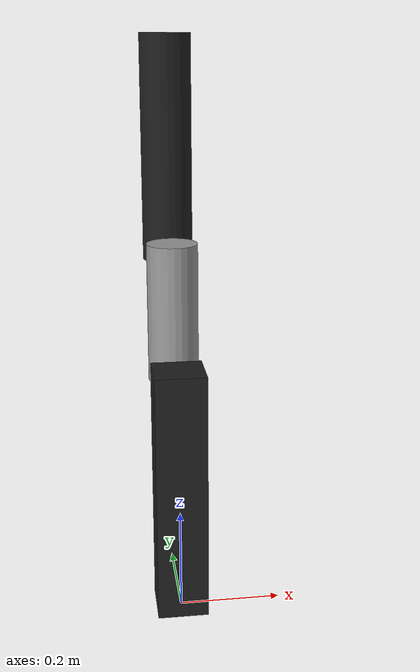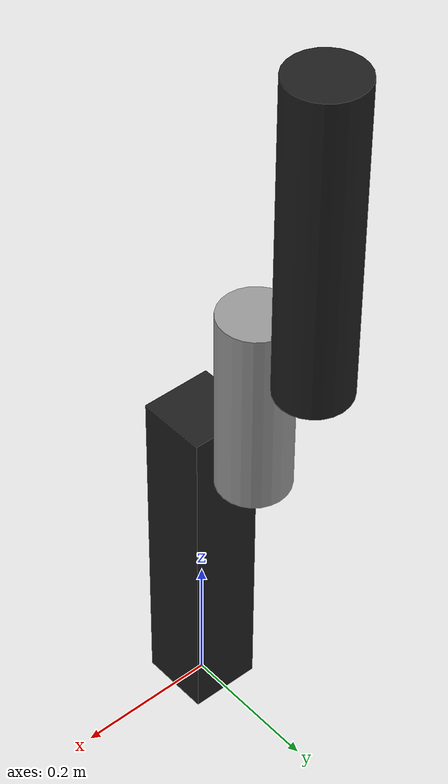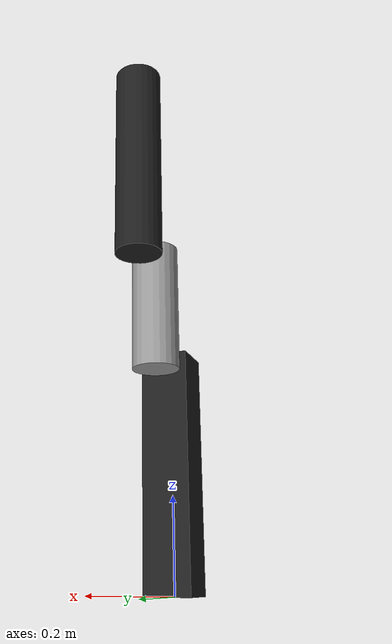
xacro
<?xml version="1.0"?>
<robot name="BERT2_robot" xmlns:xacro="http://www.ros.org/wiki/xacro">

    <!-- Constants for robot dimensions -->
    <xacro:property name="PI" value="3.1415926535897931"/>

    <!-- Base Link -->
    <xacro:property name="mass" value="5" />
    <xacro:property name="height1" value="0.5" />
    <xacro:property name="width" value="0.1" />

    <!-- Middle Link -->
    <xacro:property name="link1_mass" value="2.35" />
    <xacro:property name="link1_radius" value="0.05" />
    <xacro:property name="link1_length" value="0.2735" />

    <!-- Top Link -->
    <xacro:property name="link2_mass" value="3.0" />
    <xacro:property name="link2_radius" value="0.05" />
    <xacro:property name="link2_length" value="0.44" />

    <xacro:property name="axel_offset" value="0.025" /> <!-- Space btw top of beam and the each joint -->

    <!-- Make the robot's base immovable -->
    <link name="world"/>
    <joint name="fixed" type="fixed">
        <parent link="world"/>
        <child link="BERT2_baselink"/>
    </joint>

    <!-- Base Link -->
    <link name="BERT2_baselink">
        <collision>
            <origin xyz="0 0 ${height1/2}" rpy="0 0 0"/>
            <geometry>
                <box size="${width} ${width} ${height1}"/>
            </geometry>
        </collision>
        <visual>
            <origin xyz="0 0 ${height1/2}" rpy="0 0 0"/>
            <geometry>
                <box size="${width} ${width} ${height1}"/>
            </geometry>
            <material name="black"/>
        </visual>
        <inertial>
            <origin xyz="0 0 ${height1/2}" rpy="0 0 0"/>
            <mass value="${mass}"/>
            <inertia
                ixx="${mass / 12.0 * (width*width + height1*height1)}" ixy="0.0" ixz="0.0"
                iyy="${mass / 12.0 * (height1*height1 + width*width)}" iyz="0.0"
                izz="${mass / 12.0 * (width*width + width*width)}"/>
        </inertial>
    </link>

    <joint name="BERT2_joint1" type="continuous">
        <parent link="BERT2_baselink"/>
        <child link="BERT2_link1"/>
        <origin xyz="0 ${link1_radius*2} ${height1 - axel_offset}" rpy="0 0 0"/>
        <axis xyz="0 1 0"/>
        <dynamics damping="0.7"/>
    </joint>

    <!-- Middle Link -->
    <link name="BERT2_link1">
        <collision>
            <origin xyz="0 0 ${link1_length/2 - axel_offset}" rpy="0 0 0"/>
            <geometry>
                <cylinder radius="${link1_radius}" length="${link1_length}"/>
            </geometry>
        </collision>

        <visual>
            <origin xyz="0 0 ${link1_length/2 - axel_offset}" rpy="0 0 0"/>
            <geometry>
                <cylinder radius="${link1_radius}" length="${link1_length}"/>
            </geometry>
            <material name="grey"/>
        </visual>

        <inertial>
            <origin xyz="0 0 ${link1_length/2 - axel_offset}" rpy="0 0 0"/>
            <mass value="${link1_mass}"/>
            <inertia
                ixx="${link1_mass / 12.0 * (3*link1_radius*link1_radius + link1_length*link1_length)}" ixy="0.0" ixz="0.0"
                iyy="${link1_mass / 12.0 * (3*link1_radius*link1_radius + link1_length*link1_length)}" iyz="0.0"
                izz="${link1_mass / 2.0 * (link1_radius*link1_radius)}"/>
        </inertial>
    </link>

    <joint name="BERT2_joint2" type="continuous">
        <parent link="BERT2_link1"/>
        <child link="BERT2_link2"/>
        <origin xyz="0 ${link2_radius*2} ${link1_length - axel_offset*2}" rpy="0 0 0"/>
        <axis xyz="0 1 0"/>
        <dynamics damping="0.7"/>
    </joint>

    <!-- Top Link -->
    <link name="BERT2_link2">
        <collision>
            <origin xyz="0 0 ${link2_length/2 - axel_offset}" rpy="0 0 0"/>
            <geometry>
                <cylinder radius="${link2_radius}" length="${link2_length}"/>
            </geometry>
        </collision>

        <visual>
            <origin xyz="0 0 ${link2_length/2 - axel_offset}" rpy="0 0 0"/>
            <geometry>
                <cylinder radius="${link2_radius}" length="${link2_length}"/>
            </geometry>
            <material name="black"/>
        </visual>

        <inertial>
            <origin xyz="0 0 ${link2_length/2 - axel_offset}" rpy="0 0 0"/>
            <mass value="${link2_mass}"/>
            <inertia
                ixx="${link2_mass / 12.0 * (3*link2_radius*link2_radius + link2_length*link2_length)}" ixy="0.0" ixz="0.0"
                iyy="${link2_mass / 12.0 * (3*link2_radius*link2_radius + link2_length*link2_length)}" iyz="0.0"
                izz="${link2_mass / 2.0 * (link2_radius*link2_radius)}"/>
        </inertial>
    </link>

    <!-- Transmissions -->
    <transmission name="BERT2_tran1">
        <type>transmission_interface/SimpleTransmission</type>
        <joint name="BERT2_joint1">
            <hardwareInterface>hardware_interface/EffortJointInterface</hardwareInterface>
        </joint>
        <actuator name="BERT2_motor1">
        <hardwareInterface>hardware_interface/EffortJointInterface</hardwareInterface>
        <mechanicalReduction>1</mechanicalReduction>
        </actuator>
    </transmission>

    <transmission name="BERT2_tran2">
        <type>transmission_interface/SimpleTransmission</type>
        <joint name="BERT2_joint2">
            <hardwareInterface>hardware_interface/EffortJointInterface</hardwareInterface>
        </joint>
        <actuator name="BERT2_motor2">
            <hardwareInterface>hardware_interface/EffortJointInterface</hardwareInterface>
            <mechanicalReduction>1</mechanicalReduction>
        </actuator>
    </transmission>

    <!-- Gazebo Plugins -->
    <gazebo>
        <plugin name="gazebo_ros_control" filename="libgazebo_ros_control.so">
            <robotNamespace>/BERT2_robot</robotNamespace>
            <robotSimType>gazebo_ros_control/DefaultRobotHWSim</robotSimType>
            <controlPeriod>0.01</controlPeriod>
        </plugin>
    </gazebo>

    <!-- Additional Configs -->
    <gazebo reference="BERT2_baselink">
        <material>Gazebo/Black</material>
    </gazebo>
    <gazebo reference="BERT2_link1">
        <mu1>0.2</mu1>
        <mu2>0.2</mu2>
        <material>Gazebo/Grey</material>
    </gazebo>
    <gazebo reference="BERT2_link2">
        <mu1>0.2</mu1>
        <mu2>0.2</mu2>
        <material>Gazebo/Black</material>
    </gazebo>

</robot>
